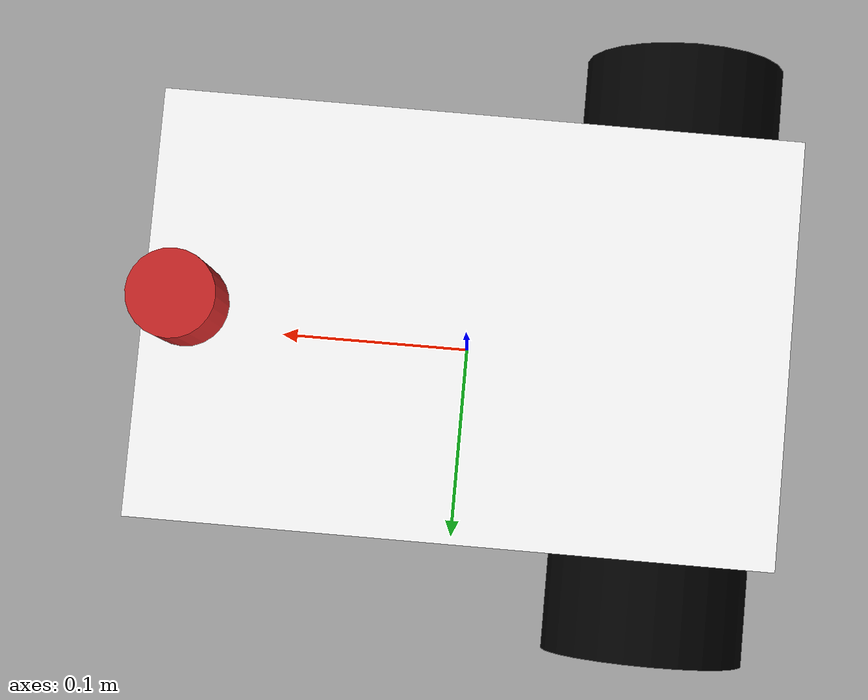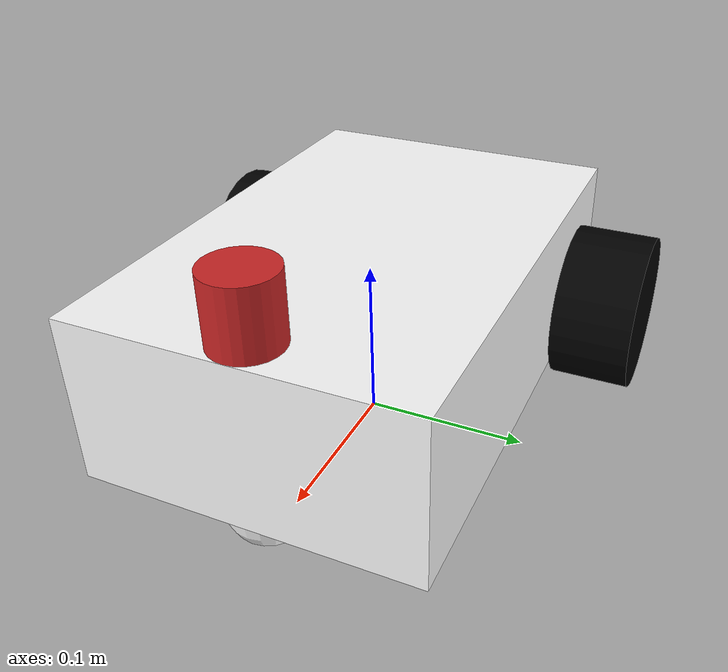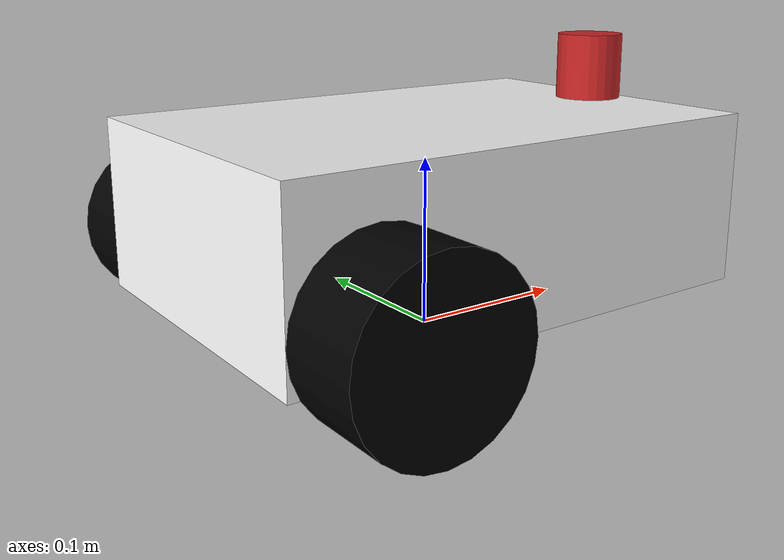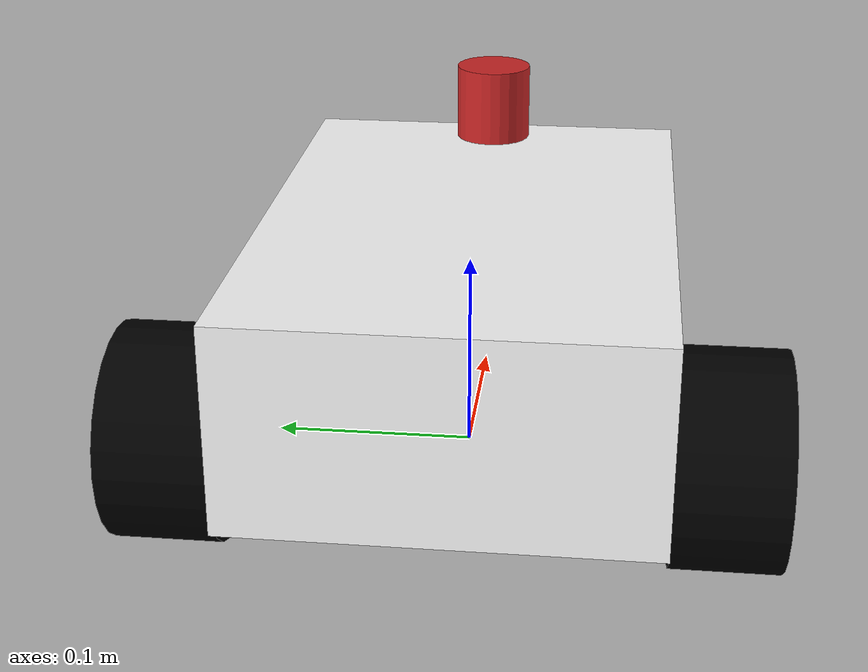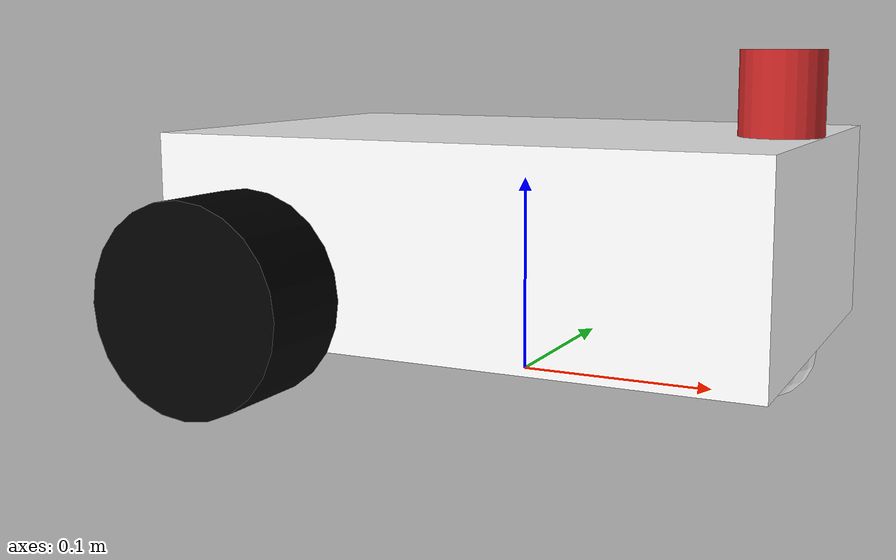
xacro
<robot name="robot3_simulation" xmlns:xacro="http://ros.org/wiki/xacro">
    <xacro:include filename="$(find vis_lecture)/urdf/model_laser_2D.xacro" />
    <xacro:include filename="$(find vis_lecture)/urdf/model_wheel.xacro" />

    <link name="base_link"/>
    <joint name="body1_joint" type="fixed">
        <parent link="base_link"/>
        <child  link="body_link"/>
        <origin rpy="0 0 ${radians(-90)}" xyz="0 0 0.075"/>
    </joint>
    <link name="body_link">
        <visual>
            <geometry>
                <box size="0.2 0.3 0.1"/>
            </geometry>
            <origin rpy="0 0 0" xyz="0 0 0"/>
            <material name="white">
                <color rgba="1 1 1 1"/>
            </material>
        </visual>
        <inertial>
            <origin xyz="0 0 0" rpy="0 0 0"/>
            <mass value="0.1"/>
            <inertia ixx="0.001" ixy="0" ixz="0" iyy="0.001" iyz="0" izz="0.001"/>
        </inertial>
        <collision>
            <origin xyz="0 0 0" rpy="0 0 0"/>
            <geometry>
                <cylinder length="0.05" radius="0.05"/>
            </geometry>
        </collision>
    </link>
    <gazebo reference="body_link">
        <material>Gazebo/white</material>
    </gazebo>

    <joint name="body_to_ball_joint" type="fixed">
        <origin xyz="0 0.125 -0.05" rpy="0 0 0"/>
        <parent link="body_link"/>
        <child link="ball_link"/>
    </joint>
    <link name="ball_link">
        <visual>
            <origin xyz="0 0 0" rpy="0 0 0"/>
            <geometry>
                <sphere radius="0.025"/>
            </geometry>
            <material name="white">
                <color rgba="1 1 1 1"/>
            </material>
        </visual>
        <collision>
            <origin xyz="0 0 0" rpy="0 0 0"/>
            <geometry>
                <sphere radius="0.025"/>
            </geometry>
        </collision>
    </link>
    <gazebo reference="ball_link">
        <material>Gazebo/white</material>
        <mu1 value="0.5" />
        <mu2 value="0.5" />
    </gazebo>

    <xacro:wheel child="wheel_R" org_xyz="0.125 -0.1 -0.025" />
    <xacro:wheel child="wheel_L" org_xyz="-0.125 -0.1 -0.025" />
    <xacro:model_laser_2D parent="body_link" prefix="laser" xyz="0 0.13 0.07"  />
    <gazebo>
        <plugin name="gazebo_ros_control" filename="libgazebo_ros_control.so">
            <robotNamespace>/robot3_simulation</robotNamespace>
        </plugin>
    </gazebo>
</robot>

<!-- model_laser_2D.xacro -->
<robot name="model_laser_2D" xmlns:xacro="http://ros.org/wiki/xacro">
    <xacro:macro name="model_laser_2D" params="parent prefix xyz">
        <joint name="${prefix}_joint" type="fixed">
            <parent link="${parent}"/>
            <child  link="${prefix}_link"/>
            <origin xyz="${xyz}" rpy="0 0 ${radians(90)}"/>
        </joint>
        <link name="${prefix}_link">
            <visual>
                <origin xyz="0 0 0" rpy="0 0 0" />
                <geometry>
                    <cylinder radius="0.02" length="0.04" />
                </geometry>
                <material name="red" />
            </visual>
            <collision>
                <origin xyz="0 0 0" rpy="0 0 0"/>
                <geometry>
                    <cylinder radius="0.02" length="0.04" />
                </geometry>
            </collision>
        </link>
        <gazebo reference="${prefix}_link">
            <material>Gazebo/Red</material>
            <sensor type="ray" name="${prefix}">
                <pose>0 0 0 0 0 0</pose>
                <visualize>true</visualize>
                <update_rate>10</update_rate>
                <ray>
                    <scan>
                        <horizontal>
                            <samples>400</samples>
                            <resolution>1</resolution>
                            <min_angle>${radians(-60)}</min_angle>
                            <max_angle>${radians(60)}</max_angle>
                        </horizontal>
                    </scan>
                    <range>
                        <min>0.10</min>
                        <max>20.0</max>
                        <resolution>0.01</resolution>
                    </range>
                    <noise>
                        <type>gaussian</type>
                        <mean>0.0</mean>
                        <stddev>0.01</stddev>
                    </noise>
                </ray>
                <plugin name="gazebo_ros_lidar_controller" filename="libgazebo_ros_laser.so">
                    <topicName>/${prefix}_link/scan</topicName>
                    <frameName>${prefix}_link</frameName>
                </plugin>
            </sensor>
        </gazebo>
    </xacro:macro>
</robot>

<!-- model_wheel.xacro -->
<robot name="robot3_simulation" xmlns:xacro="http://ros.org/wiki/xacro">
    <material name="black">
        <color rgba="0 0 0 1"/>
    </material>
    <xacro:macro name="wheel" params="child org_xyz">
        <joint name="base_to_${child}" type="continuous">
            <origin xyz="${org_xyz}" rpy="0 ${radians(-90)} 0"/>
            <parent link="body_link"/>
            <child link="${child}"/>
            <axis xyz="0 0 1" />
            <limit velocity="12.0" effort="5" />
            <dynamics damping="0.1"/>
        </joint>
        <transmission name="base_to_${child}_trans">
            <type>transmission_interface/SimpleTransmission</type>
            <joint name="base_to_${child}">
                <hardwareInterface>hardware_interface/VelocityJointInterface</hardwareInterface>
            </joint>
            <actuator name="base_to_${child}_motor">
                <hardwareInterface>hardware_interface/VelocityJointInterface</hardwareInterface>
                <mechanismReduction>1</mechanismReduction>
            </actuator>
        </transmission>
        <link name="${child}">
            <visual>
                <geometry>
                    <cylinder length="0.05" radius="0.05"/>
                </geometry>
                <origin rpy="0 0 0" xyz="0 0 0"/>
                <material name="black"/>
            </visual>
            <inertial>
                <origin xyz="0 0 0" rpy="0 0 0"/>
                <mass value="0.1"/>
                <inertia ixx="0.0001" ixy="0" ixz="0" iyy="0.0001" iyz="0" izz="0.0001"/>
            </inertial>
            <collision>
                <origin xyz="0 0 0" rpy="0 0 0"/>
                <geometry>
                    <cylinder length="0.048" radius="0.05"/>
                </geometry>
            </collision>
        </link>
        <gazebo reference="${child}">
            <material>Gazebo/black</material>
            <mu1 value="1.0" />
            <mu2 value="1.0" />
            <kp value="50000" />
            <kd value="10" />
        </gazebo>
    </xacro:macro>
</robot>
